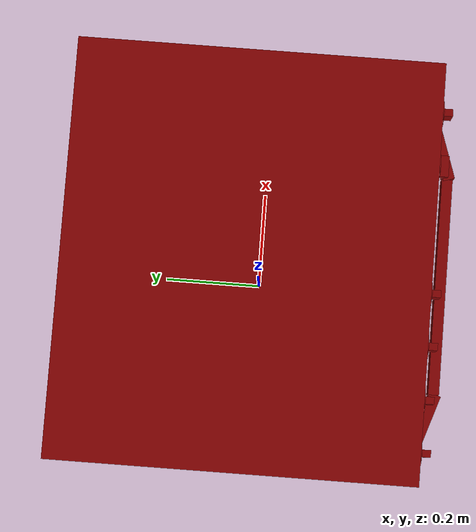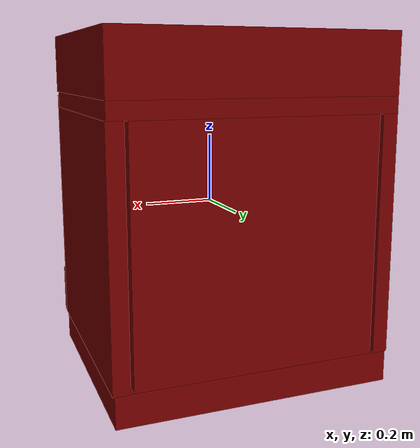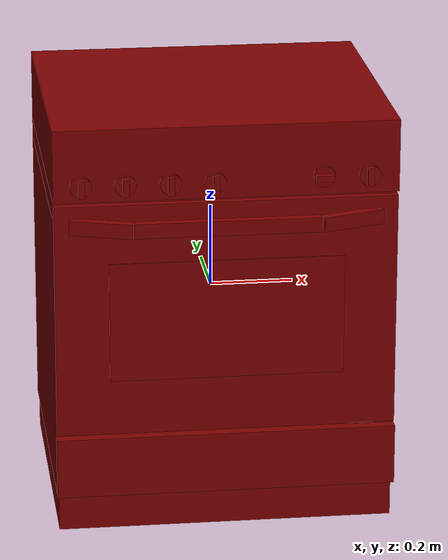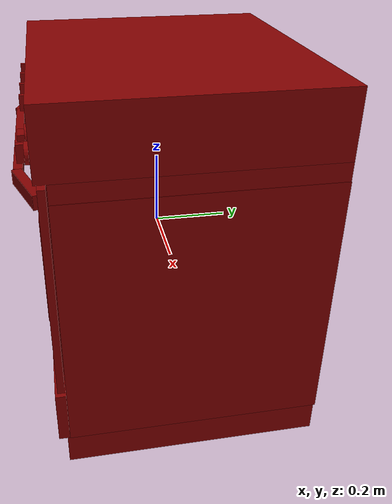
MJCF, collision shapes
<?xml version='1.0' encoding='UTF-8'?>
<mujoco model="model">
  <option timestep="0.002" gravity="0.0 0.0 -9.81"/>
  <compiler angle="radian"/>
  <asset>
    <mesh file="visuals/knob_front_left.obj" name="knob_front_left_vis"/>
    <mesh file="visuals/knob_front_right.obj" name="knob_front_right_vis"/>
    <mesh file="visuals/knob_rear_left.obj" name="knob_rear_left_vis"/>
    <mesh file="visuals/knob_rear_right.obj" name="knob_rear_right_vis"/>
    <mesh file="visuals/Body001.obj" name="Body001_vis"/>
    <mesh file="visuals/Door001.obj" name="Door001_vis"/>
    <mesh file="visuals/Door001_Clear.obj" name="Door001_Clear_vis"/>
    <mesh file="visuals/Knob001.obj" name="Knob001_vis"/>
    <mesh file="visuals/Knob002.obj" name="Knob002_vis"/>
    <mesh file="visuals/Shelf001.obj" name="Shelf001_vis"/>
    <texture file="visuals/T_BC001.png" name="Body001_material" type="2d"/>
    <material name="Body001_material" rgba="1 1 1 1.0" texture="Body001_material" shininess="0.4472135901451111" specular="2"/>
    <texture file="visuals/T_BC001.png" name="knob_front_left_material" type="2d"/>
    <material name="knob_front_left_material" rgba="1 1 1 1.0" texture="knob_front_left_material" shininess="0.4472135901451111" specular="0.3103448502657381"/>
    <texture file="visuals/T_BC001.png" name="knob_front_right_material" type="2d"/>
    <material name="knob_front_right_material" rgba="1 1 1 1.0" texture="knob_front_right_material" shininess="0.4472135901451111" specular="0.3103448502657381"/>
    <texture file="visuals/T_BC001.png" name="knob_rear_left_material" type="2d"/>
    <material name="knob_rear_left_material" rgba="1 1 1 1.0" texture="knob_rear_left_material" shininess="0.4472135901451111" specular="0.3103448502657381"/>
    <texture file="visuals/T_BC001.png" name="knob_rear_right_material" type="2d"/>
    <material name="knob_rear_right_material" rgba="1 1 1 1.0" texture="knob_rear_right_material" shininess="0.4472135901451111" specular="0.3103448502657381"/>
    <texture file="visuals/T_BC001.png" name="Door001_material" type="2d"/>
    <material name="Door001_material" rgba="1 1 1 1.0" texture="Door001_material" shininess="0.4472135901451111" specular="1"/>
    <material name="Door001_Clear_material" rgba="0.050874046981334686 0.050874046981334686 0.050874046981334686 0.5" shininess="0.4472135901451111" specular="0.3103448502657381"/>
    <texture file="visuals/T_BC001.png" name="Knob001_material" type="2d"/>
    <material name="Knob001_material" rgba="1 1 1 1.0" texture="Knob001_material" shininess="0.4472135901451111" specular="0.3103448502657381"/>
    <texture file="visuals/T_BC001.png" name="Knob002_material" type="2d"/>
    <material name="Knob002_material" rgba="1 1 1 1.0" texture="Knob002_material" shininess="0.4472135901451111" specular="0.3103448502657381"/>
    <texture file="visuals/T_BC001.png" name="Shelf001_material" type="2d"/>
    <material name="Shelf001_material" rgba="1 1 1 1.0" texture="Shelf001_material" shininess="0.4472135901451111" specular="1"/>
  </asset>
  <default>
    <default class="visual">
      <geom conaffinity="0" contype="0" group="1" type="mesh"/>
    </default>
    <default class="collision">
      <geom group="0" rgba="0.5 0 0 0.5"/>
    </default>
    <default class="spawn">
      <geom group="0" rgba="1 1 1 0.5" contype="0" conaffinity="0"/>
      <site group="0" rgba="1 1 1 0.5"/>
    </default>
    <default class="region">
      <geom group="1" conaffinity="0" contype="0" rgba="0 1 0 0"/>
    </default>
  </default>
  <worldbody>
    <body>
      <body name="object">
        <geom mesh="Body001_vis" type="mesh" solimp="0.998 0.998 0.001" solref="0.001 1" friction="0.95 0.3 0.1" class="visual" material="Body001_material"/>
        <geom class="collision" type="box" pos="-0.00133716210257262 0.023097313940525055 0.4119647145271301" size="0.403470516204834 0.35299429297447205 0.08637116104364395" quat="1.0 0.0 0.0 0.0" density="1000.0"/>
        <geom class="collision" type="box" pos="-0.00133716210257262 0.037276703864336014 0.3016856610774994" size="0.403470516204834 0.3388148844242096 0.02392094023525715" quat="1.0 0.0 0.0 0.0" density="1000.0"/>
        <geom class="collision" type="box" pos="-0.3821740746498108 0.037276703864336014 -0.06554436683654785" size="0.022633608430624008 0.3388148844242096 0.34374845027923584" quat="1.0 0.0 0.0 0.0" density="1000.0"/>
        <geom class="collision" type="box" pos="0.38086599111557007 0.037276703864336014 -0.06554436683654785" size="0.02351691946387291 0.3388148844242096 0.34374845027923584" quat="1.0 0.0 0.0 0.0" density="1000.0"/>
        <geom class="collision" type="box" pos="-0.0003176182508468628 0.3087988793849945 -0.06468535959720612" size="0.34886714816093445 0.06729273498058319 0.3428894281387329" quat="1.0 0.0 0.0 0.0" density="1000.0"/>
        <geom class="collision" type="box" pos="-0.0011778704356402159 0.03323206305503845 -0.4528595507144928" size="0.39960867166519165 0.341323584318161 0.046158429235219955" quat="1.0 0.0 0.0 0.0" density="1000.0"/>
        <geom class="collision" type="box" pos="-0.0011778704356402159 -0.02567453682422638 -0.2420055866241455" size="0.39960867166519165 0.27528083324432373 0.01859036646783352" quat="1.0 0.0 0.0 0.0" density="1000.0"/>
        <geom class="collision" type="box" pos="-0.00046219449723139405 -0.31615152955055237 -0.3353831470012665" size="0.4041641354560852 0.013781357556581497 0.07302897423505783" quat="1.0 0.0 0.0 0.0" density="1000.0"/>
        <body name="knob_front_left">
          <joint axis="0.0 -1.0 0.0" pos="-0.34077516198158264 -0.34444400668144226 0.3651833236217499" limited="true" name="knob_front_left_joint" range="0.0 3.4033920413889422" type="hinge" damping="0.05" armature="0.001"/>
          <geom mesh="knob_front_left_vis" type="mesh" solimp="0.998 0.998 0.001" solref="0.001 1" friction="0.95 0.3 0.1" class="visual" material="knob_front_left_material"/>
          <geom class="collision" type="cylinder" pos="-0.3408510088920593 -0.33739298582077026 0.3651825487613678" size="0.025227639824151993 0.0047837491147220135" quat="0.290885865688324 0.29088589549064636 -0.6445040106773376 0.6445040106773376" density="1000.0"/>
          <geom class="collision" type="box" pos="-0.3401111960411072 -0.34976986050605774 0.36422213912010193" size="0.007158827967941761 0.009866924025118351 0.021142015233635902" quat="8.674064883962274e-05 -0.0 -1.0 -0.0" density="1000.0" name="knob_front_left_main"/>
        </body>
        <body name="knob_front_right">
          <joint axis="0.0 -1.0 0.0" pos="-0.02919347584247589 -0.34444400668144226 0.3651833236217499" limited="true" name="knob_front_right_joint" range="0.0 3.4033920413889422" type="hinge" damping="0.05" armature="0.001"/>
          <geom mesh="knob_front_right_vis" type="mesh" solimp="0.998 0.998 0.001" solref="0.001 1" friction="0.95 0.3 0.1" class="visual" material="knob_front_right_material"/>
          <geom class="collision" type="box" pos="-0.028529509902000427 -0.34976986050605774 0.36422213912010193" size="0.007158827967941761 0.009866924025118351 0.021142015233635902" quat="8.674064883962274e-05 -0.0 -1.0 -0.0" density="1000.0" name="knob_front_right_main"/>
          <geom class="collision" type="cylinder" pos="-0.029269322752952576 -0.33739298582077026 0.3651825487613678" size="0.025227639824151993 0.0047837491147220135" quat="0.290885865688324 0.29088589549064636 -0.6445040106773376 0.6445040106773376" density="1000.0"/>
        </body>
        <body name="knob_rear_left">
          <joint axis="0.0 -1.0 0.0" pos="-0.23780187964439392 -0.34444400668144226 0.3651833236217499" limited="true" name="knob_rear_left_joint" range="0.0 3.4033920413889422" type="hinge" damping="0.05" armature="0.001"/>
          <geom mesh="knob_rear_left_vis" type="mesh" solimp="0.998 0.998 0.001" solref="0.001 1" friction="0.95 0.3 0.1" class="visual" material="knob_rear_left_material"/>
          <geom class="collision" type="cylinder" pos="-0.2378777265548706 -0.33739298582077026 0.3651825487613678" size="0.025227639824151993 0.0047837491147220135" quat="0.290885865688324 0.29088589549064636 -0.6445040106773376 0.6445040106773376" density="1000.0"/>
          <geom class="collision" type="box" pos="-0.23713791370391846 -0.34976986050605774 0.36422213912010193" size="0.007158827967941761 0.009866924025118351 0.021142015233635902" quat="8.674064883962274e-05 -0.0 -1.0 -0.0" density="1000.0" name="knob_rear_left_main"/>
        </body>
        <body name="knob_rear_right">
          <joint axis="0.0 -1.0 0.0" pos="-0.13299134373664856 -0.34444400668144226 0.3651833236217499" limited="true" name="knob_rear_right_joint" range="0.0 3.4033920413889422" type="hinge" damping="0.05" armature="0.001"/>
          <geom mesh="knob_rear_right_vis" type="mesh" solimp="0.998 0.998 0.001" solref="0.001 1" friction="0.95 0.3 0.1" class="visual" material="knob_rear_right_material"/>
          <geom class="collision" type="cylinder" pos="-0.13306719064712524 -0.33739298582077026 0.3651825487613678" size="0.025227639824151993 0.0047837491147220135" quat="0.290885865688324 0.29088589549064636 -0.6445040106773376 0.6445040106773376" density="1000.0"/>
          <geom class="collision" type="box" pos="-0.1323273777961731 -0.34976986050605774 0.36422213912010193" size="0.007158827967941761 0.009866924025118351 0.021142015233635902" quat="8.674064883962274e-05 -0.0 -1.0 -0.0" density="1000.0" name="knob_rear_right_main"/>
        </body>
        <body name="Door001">
          <joint axis="1.0 0.0 0.0" pos="-0.001029282808303833 -0.3302183151245117 -0.2506394386291504" limited="true" name="Door001_joint" range="0.0 1.5707963267948966" type="hinge" damping="1" frictionloss="1" armature=".01" stiffness="0.05"/>
          <geom mesh="Door001_vis" type="mesh" solimp="0.998 0.998 0.001" solref="0.001 1" friction="0.95 0.3 0.1" class="visual" material="Door001_material"/>
          <geom class="collision" type="box" pos="-0.0006009022472426295 -0.3138124942779541 0.030935212969779968" size="0.40230539441108704 0.009212714619934559 0.28285473585128784" quat="1.0 0.0 0.0 0.0" density="1000.0"/>
          <geom class="collision" type="box" pos="-0.0026176385581493378 -0.36757075786590576 0.2667674720287323" size="0.21875983476638794 0.010830674320459366 0.01747579127550125" quat="1.0 0.0 0.0 0.0" density="1000.0"/>
          <geom class="collision" type="box" pos="0.28943654894828796 -0.3470131754875183 0.2667674720287323" size="0.07668333500623703 0.011906754225492477 0.017475763335824013" quat="0.9872830510139465 0.0 0.0 0.15897221863269806" density="1000.0"/>
          <geom class="collision" type="box" pos="-0.29331424832344055 -0.3470132052898407 0.2667674720287323" size="0.07668333500623703 0.011906754225492477 0.017475763335824013" quat="0.9872830510139465 0.0 -0.0 -0.15897220373153687" density="1000.0"/>
          <body name="Door001_Clear">
            <geom mesh="Door001_Clear_vis" type="mesh" solimp="0.998 0.998 0.001" solref="0.001 1" friction="0.95 0.3 0.1" class="visual" material="Door001_Clear_material"/>
            <geom class="collision" type="box" pos="4.223734140396118e-05 -0.32718899846076965 0.027562923729419708" size="0.27652907371520996 0.002374029252678156 0.1450524628162384" quat="1.0 0.0 0.0 0.0" density="1000.0"/>
          </body>
        </body>
        <body name="Knob001">
          <joint axis="0.0 1.0 0.0" pos="0.22473637759685516 -0.34444400668144226 0.3703610897064209" limited="true" name="Knob001_joint" range="0.0 5.235987755982989" type="hinge" damping="0.05" armature="0.001"/>
          <geom mesh="Knob001_vis" type="mesh" solimp="0.998 0.998 0.001" solref="0.001 1" friction="0.95 0.3 0.1" class="visual" material="Knob001_material"/>
          <geom class="collision" type="box" pos="0.2256975620985031 -0.34976986050605774 0.37102505564689636" size="0.007158827967941761 0.009866924025118351 0.021142015233635902" quat="0.7070454359054565 0.0 0.7071681022644043 0.0" density="1000.0"/>
          <geom class="collision" type="cylinder" pos="0.22473715245723724 -0.33739298582077026 0.3702852427959442" size="0.025227639824151993 0.0047837491147220135" quat="0.2500457763671875 0.2500457763671875 0.6614205241203308 -0.6614205241203308" density="1000.0"/>
        </body>
        <body name="Knob002">
          <joint axis="0.0 1.0 0.0" pos="0.33121806383132935 -0.34444400668144226 0.3698011636734009" limited="true" name="Knob002_joint" range="0.0 5.619960191421741" type="hinge" damping="0.05" armature="0.001"/>
          <geom mesh="Knob002_vis" type="mesh" solimp="0.998 0.998 0.001" solref="0.001 1" friction="0.95 0.3 0.1" class="visual" material="Knob002_material"/>
          <geom class="collision" type="box" pos="0.3305540978908539 -0.34976986050605774 0.37076234817504883" size="0.007158827967941761 0.009866924025118351 0.021142015233635902" quat="1.0 0.0 8.678436279296875e-05 0.0" density="1000.0"/>
          <geom class="collision" type="cylinder" pos="0.33129391074180603 -0.33739298582077026 0.36980193853378296" size="0.025227639824151993 0.0047837491147220135" quat="0.6445040106773376 0.6445040106773376 0.29088589549064636 -0.290885865688324" density="1000.0"/>
        </body>
        <body name="Shelf001">
          <joint axis="0.0 -1.0 0.0" pos="-0.000943794846534729 -0.003112494945526123 0.039472855627536774" limited="true" name="Shelf001_joint" range="0.0 0.4" type="slide" damping="1" frictionloss="1" armature=".01" stiffness="0.05"/>
          <geom mesh="Shelf001_vis" type="mesh" solimp="0.998 0.998 0.001" solref="0.001 1" friction="0.95 0.3 0.1" class="visual" material="Shelf001_material"/>
          <geom class="collision" type="box" pos="-0.0011799943167716265 -0.002897242084145546 0.0401429682970047" size="0.3561020791530609 0.22451835870742798 0.005714888218790293" quat="1.0 0.0 0.0 0.0" density="1000.0"/>
        </body>
        <geom class="region" name="reg_int" type="box" pos="-0.001118496060371399 -0.029247991740703583 0.026836156845092773" size="0.3597265034914017 0.2728329375386238 0.25171977281570435"/>
        <site type="cylinder" rgba="0.5 0 0 0.5" size="0.11493770033121109 0.0001" pos="-0.18242281675338745 0.17771616578102112 0.4971129894256592" name="burner_on_rear_left"/>
        <site type="cylinder" rgba="0.5 0 0 0.5" size="0.13455946743488312 0.0001" pos="-0.17589505016803741 -0.13172271847724915 0.4971129894256592" name="burner_on_front_left"/>
        <site type="cylinder" rgba="0.5 0 0 0.5" size="0.09153815358877182 0.0001" pos="0.18813249468803406 -0.13089273869991302 0.4971129894256592" name="burner_on_front_right"/>
        <site type="cylinder" rgba="0.5 0 0 0.5" size="0.14762985706329346 0.0001" pos="0.17805592715740204 0.15793348848819733 0.4971129894256592" name="burner_on_rear_right"/>
        <site name="burner_rear_left_place_site" type="cylinder" rgba="0.5 0 0 0" size="0.11493770033121109 4.999999873689376e-05" pos="-0.18242281675338745 0.17771616578102112 0.4971129894256592"/>
        <site name="burner_front_left_place_site" type="cylinder" rgba="0.5 0 0 0" size="0.13455946743488312 4.999999873689376e-05" pos="-0.17589505016803741 -0.13172271847724915 0.4971129894256592"/>
        <site name="burner_front_right_place_site" type="cylinder" rgba="0.5 0 0 0" size="0.09153815358877182 4.999999873689376e-05" pos="0.18813249468803406 -0.13089273869991302 0.4971129894256592"/>
        <site name="burner_rear_right_place_site" type="cylinder" rgba="0.5 0 0 0" size="0.14762985706329346 4.999999873689376e-05" pos="0.17805592715740204 0.15793348848819733 0.4971129894256592"/>
        <geom class="region" name="reg_main" type="box" pos="0.0 0.022844165563583374 0.0" size="0.4050898551940918 0.35474395751953125 0.49991852045059204"/>
      </body>
    </body>
  </worldbody>
  <actuator>
    <motor name="knob_front_left_joint_actuator" joint="knob_front_left_joint" gear="10"/>
    <motor name="knob_front_right_joint_actuator" joint="knob_front_right_joint" gear="10"/>
    <motor name="knob_rear_left_joint_actuator" joint="knob_rear_left_joint" gear="10"/>
    <motor name="knob_rear_right_joint_actuator" joint="knob_rear_right_joint" gear="10"/>
    <motor name="Door001_joint_actuator" joint="Door001_joint" gear="50"/>
    <motor name="Knob001_joint_actuator" joint="Knob001_joint" gear="50"/>
    <motor name="Knob002_joint_actuator" joint="Knob002_joint" gear="50"/>
    <motor name="Shelf001_joint_actuator" joint="Shelf001_joint" gear="50"/>
  </actuator>
</mujoco>
